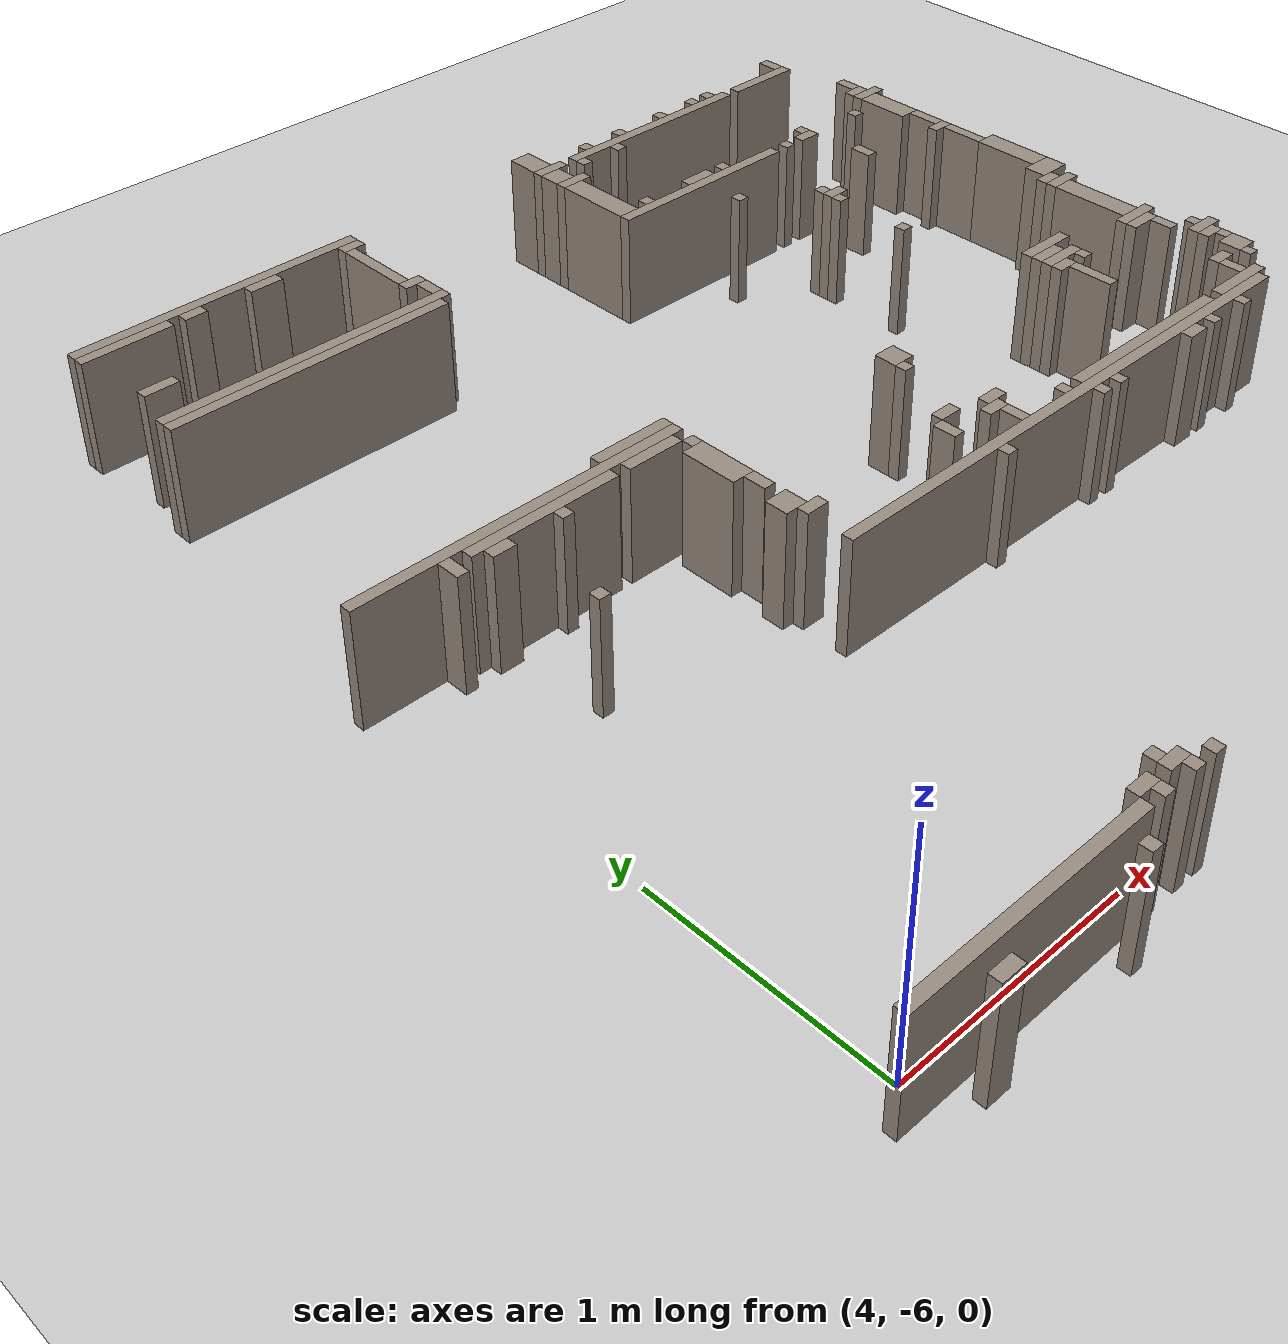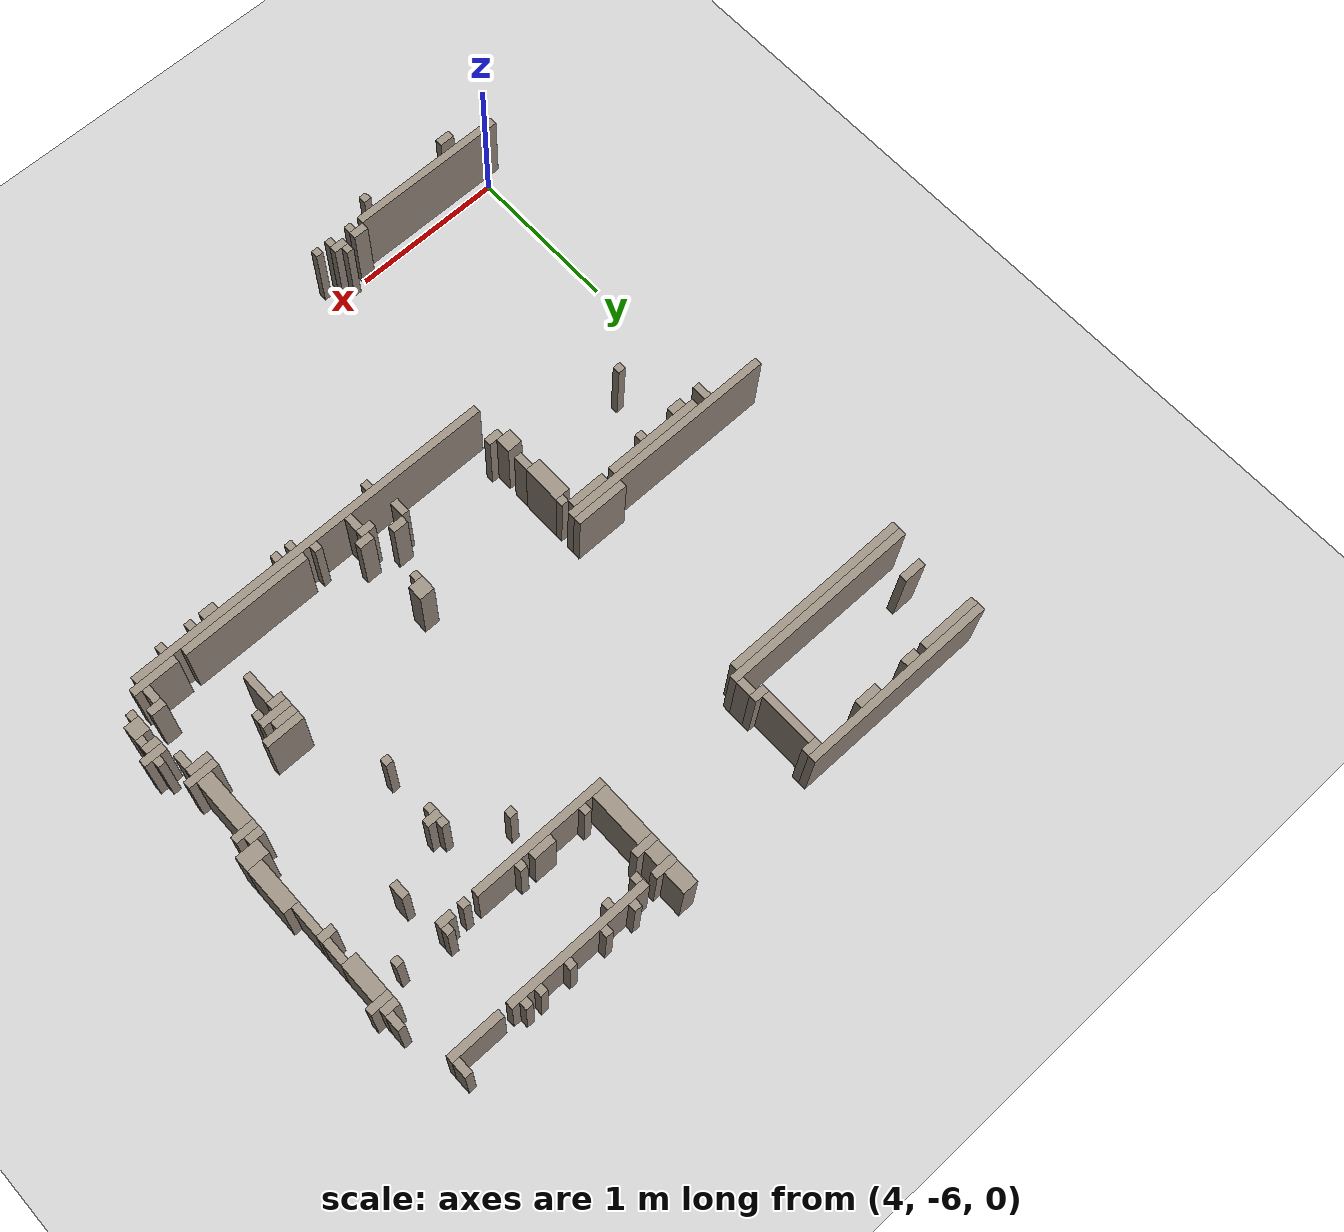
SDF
<sdf version="1.8">
 <world name="sala_real">
  <model name="ground_plane">
   <static>true</static>
   <link name="link">
    <collision name="col">
     <geometry><plane><normal>0 0 1</normal><size>100 100</size></plane></geometry>
    </collision>
    <visual name="vis">
     <geometry><plane><normal>0 0 1</normal><size>100 100</size></plane></geometry>
     <material><ambient>0.8 0.8 0.8 1</ambient><diffuse>0.8 0.8 0.8 1</diffuse></material>
    </visual>
   </link>
  </model>
  <model name="wall_289">
   <static>true</static>
   <pose>6.215 -1.938 0.250 0 0 0</pose>
   <link name="link">
    <collision name="col"><geometry><box><size>0.100 0.150 0.500</size></box></geometry></collision>
    <visual name="vis">
     <geometry><box><size>0.100 0.150 0.500</size></box></geometry>
     <material><ambient>0.6 0.55 0.5 1</ambient><diffuse>0.6 0.55 0.5 1</diffuse></material>
    </visual>
   </link>
  </model>
  <model name="wall_293">
   <static>true</static>
   <pose>6.240 -2.038 0.250 0 0 0</pose>
   <link name="link">
    <collision name="col"><geometry><box><size>0.150 0.050 0.500</size></box></geometry></collision>
    <visual name="vis">
     <geometry><box><size>0.150 0.050 0.500</size></box></geometry>
     <material><ambient>0.6 0.55 0.5 1</ambient><diffuse>0.6 0.55 0.5 1</diffuse></material>
    </visual>
   </link>
  </model>
  <model name="wall_294">
   <static>true</static>
   <pose>6.215 -2.113 0.250 0 0 0</pose>
   <link name="link">
    <collision name="col"><geometry><box><size>0.100 0.100 0.500</size></box></geometry></collision>
    <visual name="vis">
     <geometry><box><size>0.100 0.100 0.500</size></box></geometry>
     <material><ambient>0.6 0.55 0.5 1</ambient><diffuse>0.6 0.55 0.5 1</diffuse></material>
    </visual>
   </link>
  </model>
  <model name="wall_296">
   <static>true</static>
   <pose>5.215 -1.988 0.250 0 0 0</pose>
   <link name="link">
    <collision name="col"><geometry><box><size>0.100 0.050 0.500</size></box></geometry></collision>
    <visual name="vis">
     <geometry><box><size>0.100 0.050 0.500</size></box></geometry>
     <material><ambient>0.6 0.55 0.5 1</ambient><diffuse>0.6 0.55 0.5 1</diffuse></material>
    </visual>
   </link>
  </model>
  <model name="wall_299">
   <static>true</static>
   <pose>4.615 -1.938 0.250 0 0 0</pose>
   <link name="link">
    <collision name="col"><geometry><box><size>1.300 0.050 0.500</size></box></geometry></collision>
    <visual name="vis">
     <geometry><box><size>1.300 0.050 0.500</size></box></geometry>
     <material><ambient>0.6 0.55 0.5 1</ambient><diffuse>0.6 0.55 0.5 1</diffuse></material>
    </visual>
   </link>
  </model>
  <model name="wall_303">
   <static>true</static>
   <pose>7.765 -2.438 0.250 0 0 0</pose>
   <link name="link">
    <collision name="col"><geometry><box><size>0.100 0.050 0.500</size></box></geometry></collision>
    <visual name="vis">
     <geometry><box><size>0.100 0.050 0.500</size></box></geometry>
     <material><ambient>0.6 0.55 0.5 1</ambient><diffuse>0.6 0.55 0.5 1</diffuse></material>
    </visual>
   </link>
  </model>
  <model name="wall_304">
   <static>true</static>
   <pose>7.140 -1.988 0.250 0 0 0</pose>
   <link name="link">
    <collision name="col"><geometry><box><size>0.050 0.050 0.500</size></box></geometry></collision>
    <visual name="vis">
     <geometry><box><size>0.050 0.050 0.500</size></box></geometry>
     <material><ambient>0.6 0.55 0.5 1</ambient><diffuse>0.6 0.55 0.5 1</diffuse></material>
    </visual>
   </link>
  </model>
  <model name="wall_311">
   <static>true</static>
   <pose>7.790 -2.363 0.250 0 0 0</pose>
   <link name="link">
    <collision name="col"><geometry><box><size>0.050 0.100 0.500</size></box></geometry></collision>
    <visual name="vis">
     <geometry><box><size>0.050 0.100 0.500</size></box></geometry>
     <material><ambient>0.6 0.55 0.5 1</ambient><diffuse>0.6 0.55 0.5 1</diffuse></material>
    </visual>
   </link>
  </model>
  <model name="wall_312">
   <static>true</static>
   <pose>7.765 -2.638 0.250 0 0 0</pose>
   <link name="link">
    <collision name="col"><geometry><box><size>0.100 0.250 0.500</size></box></geometry></collision>
    <visual name="vis">
     <geometry><box><size>0.100 0.250 0.500</size></box></geometry>
     <material><ambient>0.6 0.55 0.5 1</ambient><diffuse>0.6 0.55 0.5 1</diffuse></material>
    </visual>
   </link>
  </model>
  <model name="wall_313">
   <static>true</static>
   <pose>6.940 -1.988 0.250 0 0 0</pose>
   <link name="link">
    <collision name="col"><geometry><box><size>0.050 0.050 0.500</size></box></geometry></collision>
    <visual name="vis">
     <geometry><box><size>0.050 0.050 0.500</size></box></geometry>
     <material><ambient>0.6 0.55 0.5 1</ambient><diffuse>0.6 0.55 0.5 1</diffuse></material>
    </visual>
   </link>
  </model>
  <model name="wall_314">
   <static>true</static>
   <pose>7.790 -2.838 0.250 0 0 0</pose>
   <link name="link">
    <collision name="col"><geometry><box><size>0.050 0.150 0.500</size></box></geometry></collision>
    <visual name="vis">
     <geometry><box><size>0.050 0.150 0.500</size></box></geometry>
     <material><ambient>0.6 0.55 0.5 1</ambient><diffuse>0.6 0.55 0.5 1</diffuse></material>
    </visual>
   </link>
  </model>
  <model name="wall_315">
   <static>true</static>
   <pose>6.940 -2.988 0.250 0 0 0</pose>
   <link name="link">
    <collision name="col"><geometry><box><size>0.050 0.050 0.500</size></box></geometry></collision>
    <visual name="vis">
     <geometry><box><size>0.050 0.050 0.500</size></box></geometry>
     <material><ambient>0.6 0.55 0.5 1</ambient><diffuse>0.6 0.55 0.5 1</diffuse></material>
    </visual>
   </link>
  </model>
  <model name="wall_316">
   <static>true</static>
   <pose>6.940 -3.088 0.250 0 0 0</pose>
   <link name="link">
    <collision name="col"><geometry><box><size>0.050 0.050 0.500</size></box></geometry></collision>
    <visual name="vis">
     <geometry><box><size>0.050 0.050 0.500</size></box></geometry>
     <material><ambient>0.6 0.55 0.5 1</ambient><diffuse>0.6 0.55 0.5 1</diffuse></material>
    </visual>
   </link>
  </model>
  <model name="wall_317">
   <static>true</static>
   <pose>7.790 -2.488 0.250 0 0 0</pose>
   <link name="link">
    <collision name="col"><geometry><box><size>0.150 0.050 0.500</size></box></geometry></collision>
    <visual name="vis">
     <geometry><box><size>0.150 0.050 0.500</size></box></geometry>
     <material><ambient>0.6 0.55 0.5 1</ambient><diffuse>0.6 0.55 0.5 1</diffuse></material>
    </visual>
   </link>
  </model>
  <model name="wall_320">
   <static>true</static>
   <pose>7.715 -3.588 0.250 0 0 0</pose>
   <link name="link">
    <collision name="col"><geometry><box><size>0.100 0.050 0.500</size></box></geometry></collision>
    <visual name="vis">
     <geometry><box><size>0.100 0.050 0.500</size></box></geometry>
     <material><ambient>0.6 0.55 0.5 1</ambient><diffuse>0.6 0.55 0.5 1</diffuse></material>
    </visual>
   </link>
  </model>
  <model name="wall_328">
   <static>true</static>
   <pose>5.240 -2.463 0.250 0 0 0</pose>
   <link name="link">
    <collision name="col"><geometry><box><size>0.050 0.100 0.500</size></box></geometry></collision>
    <visual name="vis">
     <geometry><box><size>0.050 0.100 0.500</size></box></geometry>
     <material><ambient>0.6 0.55 0.5 1</ambient><diffuse>0.6 0.55 0.5 1</diffuse></material>
    </visual>
   </link>
  </model>
  <model name="wall_329">
   <static>true</static>
   <pose>5.215 -2.388 0.250 0 0 0</pose>
   <link name="link">
    <collision name="col"><geometry><box><size>0.100 0.050 0.500</size></box></geometry></collision>
    <visual name="vis">
     <geometry><box><size>0.100 0.050 0.500</size></box></geometry>
     <material><ambient>0.6 0.55 0.5 1</ambient><diffuse>0.6 0.55 0.5 1</diffuse></material>
    </visual>
   </link>
  </model>
  <model name="wall_338">
   <static>true</static>
   <pose>7.290 -2.538 0.250 0 0 0</pose>
   <link name="link">
    <collision name="col"><geometry><box><size>0.050 0.050 0.500</size></box></geometry></collision>
    <visual name="vis">
     <geometry><box><size>0.050 0.050 0.500</size></box></geometry>
     <material><ambient>0.6 0.55 0.5 1</ambient><diffuse>0.6 0.55 0.5 1</diffuse></material>
    </visual>
   </link>
  </model>
  <model name="wall_348">
   <static>true</static>
   <pose>5.240 -3.938 0.250 0 0 0</pose>
   <link name="link">
    <collision name="col"><geometry><box><size>0.050 0.050 0.500</size></box></geometry></collision>
    <visual name="vis">
     <geometry><box><size>0.050 0.050 0.500</size></box></geometry>
     <material><ambient>0.6 0.55 0.5 1</ambient><diffuse>0.6 0.55 0.5 1</diffuse></material>
    </visual>
   </link>
  </model>
  <model name="wall_354">
   <static>true</static>
   <pose>7.815 -3.313 0.250 0 0 0</pose>
   <link name="link">
    <collision name="col"><geometry><box><size>0.100 0.300 0.500</size></box></geometry></collision>
    <visual name="vis">
     <geometry><box><size>0.100 0.300 0.500</size></box></geometry>
     <material><ambient>0.6 0.55 0.5 1</ambient><diffuse>0.6 0.55 0.5 1</diffuse></material>
    </visual>
   </link>
  </model>
  <model name="wall_357">
   <static>true</static>
   <pose>5.215 -4.088 0.250 0 0 0</pose>
   <link name="link">
    <collision name="col"><geometry><box><size>0.100 0.250 0.500</size></box></geometry></collision>
    <visual name="vis">
     <geometry><box><size>0.100 0.250 0.500</size></box></geometry>
     <material><ambient>0.6 0.55 0.5 1</ambient><diffuse>0.6 0.55 0.5 1</diffuse></material>
    </visual>
   </link>
  </model>
  <model name="wall_358">
   <static>true</static>
   <pose>7.840 -4.238 0.250 0 0 0</pose>
   <link name="link">
    <collision name="col"><geometry><box><size>0.050 0.050 0.500</size></box></geometry></collision>
    <visual name="vis">
     <geometry><box><size>0.050 0.050 0.500</size></box></geometry>
     <material><ambient>0.6 0.55 0.5 1</ambient><diffuse>0.6 0.55 0.5 1</diffuse></material>
    </visual>
   </link>
  </model>
  <model name="wall_361">
   <static>true</static>
   <pose>7.815 -4.338 0.250 0 0 0</pose>
   <link name="link">
    <collision name="col"><geometry><box><size>0.100 0.050 0.500</size></box></geometry></collision>
    <visual name="vis">
     <geometry><box><size>0.100 0.050 0.500</size></box></geometry>
     <material><ambient>0.6 0.55 0.5 1</ambient><diffuse>0.6 0.55 0.5 1</diffuse></material>
    </visual>
   </link>
  </model>
  <model name="wall_365">
   <static>true</static>
   <pose>6.215 -2.388 0.250 0 0 0</pose>
   <link name="link">
    <collision name="col"><geometry><box><size>0.100 0.350 0.500</size></box></geometry></collision>
    <visual name="vis">
     <geometry><box><size>0.100 0.350 0.500</size></box></geometry>
     <material><ambient>0.6 0.55 0.5 1</ambient><diffuse>0.6 0.55 0.5 1</diffuse></material>
    </visual>
   </link>
  </model>
  <model name="wall_368">
   <static>true</static>
   <pose>6.165 -4.063 0.250 0 0 0</pose>
   <link name="link">
    <collision name="col"><geometry><box><size>0.100 0.100 0.500</size></box></geometry></collision>
    <visual name="vis">
     <geometry><box><size>0.100 0.100 0.500</size></box></geometry>
     <material><ambient>0.6 0.55 0.5 1</ambient><diffuse>0.6 0.55 0.5 1</diffuse></material>
    </visual>
   </link>
  </model>
  <model name="wall_370">
   <static>true</static>
   <pose>7.790 -3.063 0.250 0 0 0</pose>
   <link name="link">
    <collision name="col"><geometry><box><size>0.050 0.200 0.500</size></box></geometry></collision>
    <visual name="vis">
     <geometry><box><size>0.050 0.200 0.500</size></box></geometry>
     <material><ambient>0.6 0.55 0.5 1</ambient><diffuse>0.6 0.55 0.5 1</diffuse></material>
    </visual>
   </link>
  </model>
  <model name="wall_382">
   <static>true</static>
   <pose>6.640 -2.788 0.250 0 0 0</pose>
   <link name="link">
    <collision name="col"><geometry><box><size>0.050 0.050 0.500</size></box></geometry></collision>
    <visual name="vis">
     <geometry><box><size>0.050 0.050 0.500</size></box></geometry>
     <material><ambient>0.6 0.55 0.5 1</ambient><diffuse>0.6 0.55 0.5 1</diffuse></material>
    </visual>
   </link>
  </model>
  <model name="wall_383">
   <static>true</static>
   <pose>7.240 -1.988 0.250 0 0 0</pose>
   <link name="link">
    <collision name="col"><geometry><box><size>0.050 0.050 0.500</size></box></geometry></collision>
    <visual name="vis">
     <geometry><box><size>0.050 0.050 0.500</size></box></geometry>
     <material><ambient>0.6 0.55 0.5 1</ambient><diffuse>0.6 0.55 0.5 1</diffuse></material>
    </visual>
   </link>
  </model>
  <model name="wall_405">
   <static>true</static>
   <pose>5.240 -4.263 0.250 0 0 0</pose>
   <link name="link">
    <collision name="col"><geometry><box><size>0.050 0.100 0.500</size></box></geometry></collision>
    <visual name="vis">
     <geometry><box><size>0.050 0.100 0.500</size></box></geometry>
     <material><ambient>0.6 0.55 0.5 1</ambient><diffuse>0.6 0.55 0.5 1</diffuse></material>
    </visual>
   </link>
  </model>
  <model name="wall_612">
   <static>true</static>
   <pose>6.140 -4.138 0.250 0 0 0</pose>
   <link name="link">
    <collision name="col"><geometry><box><size>0.050 0.050 0.500</size></box></geometry></collision>
    <visual name="vis">
     <geometry><box><size>0.050 0.050 0.500</size></box></geometry>
     <material><ambient>0.6 0.55 0.5 1</ambient><diffuse>0.6 0.55 0.5 1</diffuse></material>
    </visual>
   </link>
  </model>
  <model name="wall_619">
   <static>true</static>
   <pose>5.190 -2.188 0.250 0 0 0</pose>
   <link name="link">
    <collision name="col"><geometry><box><size>0.050 0.350 0.500</size></box></geometry></collision>
    <visual name="vis">
     <geometry><box><size>0.050 0.350 0.500</size></box></geometry>
     <material><ambient>0.6 0.55 0.5 1</ambient><diffuse>0.6 0.55 0.5 1</diffuse></material>
    </visual>
   </link>
  </model>
  <model name="wall_627">
   <static>true</static>
   <pose>6.340 -2.538 0.250 0 0 0</pose>
   <link name="link">
    <collision name="col"><geometry><box><size>0.050 0.050 0.500</size></box></geometry></collision>
    <visual name="vis">
     <geometry><box><size>0.050 0.050 0.500</size></box></geometry>
     <material><ambient>0.6 0.55 0.5 1</ambient><diffuse>0.6 0.55 0.5 1</diffuse></material>
    </visual>
   </link>
  </model>
  <model name="wall_635">
   <static>true</static>
   <pose>5.140 -6.088 0.250 0 0 0</pose>
   <link name="link">
    <collision name="col"><geometry><box><size>0.050 0.050 0.500</size></box></geometry></collision>
    <visual name="vis">
     <geometry><box><size>0.050 0.050 0.500</size></box></geometry>
     <material><ambient>0.6 0.55 0.5 1</ambient><diffuse>0.6 0.55 0.5 1</diffuse></material>
    </visual>
   </link>
  </model>
  <model name="wall_700">
   <static>true</static>
   <pose>7.590 -2.588 0.250 0 0 0</pose>
   <link name="link">
    <collision name="col"><geometry><box><size>0.050 0.050 0.500</size></box></geometry></collision>
    <visual name="vis">
     <geometry><box><size>0.050 0.050 0.500</size></box></geometry>
     <material><ambient>0.6 0.55 0.5 1</ambient><diffuse>0.6 0.55 0.5 1</diffuse></material>
    </visual>
   </link>
  </model>
  <model name="wall_704">
   <static>true</static>
   <pose>6.190 -4.613 0.250 0 0 0</pose>
   <link name="link">
    <collision name="col"><geometry><box><size>0.050 0.100 0.500</size></box></geometry></collision>
    <visual name="vis">
     <geometry><box><size>0.050 0.100 0.500</size></box></geometry>
     <material><ambient>0.6 0.55 0.5 1</ambient><diffuse>0.6 0.55 0.5 1</diffuse></material>
    </visual>
   </link>
  </model>
  <model name="wall_709">
   <static>true</static>
   <pose>6.165 -4.538 0.250 0 0 0</pose>
   <link name="link">
    <collision name="col"><geometry><box><size>0.100 0.050 0.500</size></box></geometry></collision>
    <visual name="vis">
     <geometry><box><size>0.100 0.050 0.500</size></box></geometry>
     <material><ambient>0.6 0.55 0.5 1</ambient><diffuse>0.6 0.55 0.5 1</diffuse></material>
    </visual>
   </link>
  </model>
  <model name="wall_712">
   <static>true</static>
   <pose>5.990 -4.738 0.250 0 0 0</pose>
   <link name="link">
    <collision name="col"><geometry><box><size>0.050 0.050 0.500</size></box></geometry></collision>
    <visual name="vis">
     <geometry><box><size>0.050 0.050 0.500</size></box></geometry>
     <material><ambient>0.6 0.55 0.5 1</ambient><diffuse>0.6 0.55 0.5 1</diffuse></material>
    </visual>
   </link>
  </model>
  <model name="wall_715">
   <static>true</static>
   <pose>5.940 -4.513 0.250 0 0 0</pose>
   <link name="link">
    <collision name="col"><geometry><box><size>0.050 0.100 0.500</size></box></geometry></collision>
    <visual name="vis">
     <geometry><box><size>0.050 0.100 0.500</size></box></geometry>
     <material><ambient>0.6 0.55 0.5 1</ambient><diffuse>0.6 0.55 0.5 1</diffuse></material>
    </visual>
   </link>
  </model>
  <model name="wall_717">
   <static>true</static>
   <pose>7.640 -4.563 0.250 0 0 0</pose>
   <link name="link">
    <collision name="col"><geometry><box><size>0.050 0.100 0.500</size></box></geometry></collision>
    <visual name="vis">
     <geometry><box><size>0.050 0.100 0.500</size></box></geometry>
     <material><ambient>0.6 0.55 0.5 1</ambient><diffuse>0.6 0.55 0.5 1</diffuse></material>
    </visual>
   </link>
  </model>
  <model name="wall_720">
   <static>true</static>
   <pose>6.440 -4.638 0.250 0 0 0</pose>
   <link name="link">
    <collision name="col"><geometry><box><size>0.050 0.050 0.500</size></box></geometry></collision>
    <visual name="vis">
     <geometry><box><size>0.050 0.050 0.500</size></box></geometry>
     <material><ambient>0.6 0.55 0.5 1</ambient><diffuse>0.6 0.55 0.5 1</diffuse></material>
    </visual>
   </link>
  </model>
  <model name="wall_724">
   <static>true</static>
   <pose>6.390 -2.088 0.250 0 0 0</pose>
   <link name="link">
    <collision name="col"><geometry><box><size>0.050 0.050 0.500</size></box></geometry></collision>
    <visual name="vis">
     <geometry><box><size>0.050 0.050 0.500</size></box></geometry>
     <material><ambient>0.6 0.55 0.5 1</ambient><diffuse>0.6 0.55 0.5 1</diffuse></material>
    </visual>
   </link>
  </model>
  <model name="wall_737">
   <static>true</static>
   <pose>4.165 -6.188 0.250 0 0 0</pose>
   <link name="link">
    <collision name="col"><geometry><box><size>0.100 0.050 0.500</size></box></geometry></collision>
    <visual name="vis">
     <geometry><box><size>0.100 0.050 0.500</size></box></geometry>
     <material><ambient>0.6 0.55 0.5 1</ambient><diffuse>0.6 0.55 0.5 1</diffuse></material>
    </visual>
   </link>
  </model>
  <model name="wall_748">
   <static>true</static>
   <pose>4.990 -6.088 0.250 0 0 0</pose>
   <link name="link">
    <collision name="col"><geometry><box><size>0.050 0.050 0.500</size></box></geometry></collision>
    <visual name="vis">
     <geometry><box><size>0.050 0.050 0.500</size></box></geometry>
     <material><ambient>0.6 0.55 0.5 1</ambient><diffuse>0.6 0.55 0.5 1</diffuse></material>
    </visual>
   </link>
  </model>
  <model name="wall_752">
   <static>true</static>
   <pose>4.465 -1.988 0.250 0 0 0</pose>
   <link name="link">
    <collision name="col"><geometry><box><size>0.100 0.050 0.500</size></box></geometry></collision>
    <visual name="vis">
     <geometry><box><size>0.100 0.050 0.500</size></box></geometry>
     <material><ambient>0.6 0.55 0.5 1</ambient><diffuse>0.6 0.55 0.5 1</diffuse></material>
    </visual>
   </link>
  </model>
  <model name="wall_774">
   <static>true</static>
   <pose>4.440 -4.338 0.250 0 0 0</pose>
   <link name="link">
    <collision name="col"><geometry><box><size>0.050 0.050 0.500</size></box></geometry></collision>
    <visual name="vis">
     <geometry><box><size>0.050 0.050 0.500</size></box></geometry>
     <material><ambient>0.6 0.55 0.5 1</ambient><diffuse>0.6 0.55 0.5 1</diffuse></material>
    </visual>
   </link>
  </model>
  <model name="wall_777">
   <static>true</static>
   <pose>4.790 -6.188 0.250 0 0 0</pose>
   <link name="link">
    <collision name="col"><geometry><box><size>0.050 0.050 0.500</size></box></geometry></collision>
    <visual name="vis">
     <geometry><box><size>0.050 0.050 0.500</size></box></geometry>
     <material><ambient>0.6 0.55 0.5 1</ambient><diffuse>0.6 0.55 0.5 1</diffuse></material>
    </visual>
   </link>
  </model>
  <model name="wall_787">
   <static>true</static>
   <pose>6.540 -4.738 0.250 0 0 0</pose>
   <link name="link">
    <collision name="col"><geometry><box><size>0.050 0.050 0.500</size></box></geometry></collision>
    <visual name="vis">
     <geometry><box><size>0.050 0.050 0.500</size></box></geometry>
     <material><ambient>0.6 0.55 0.5 1</ambient><diffuse>0.6 0.55 0.5 1</diffuse></material>
    </visual>
   </link>
  </model>
  <model name="wall_788">
   <static>true</static>
   <pose>6.690 -1.988 0.250 0 0 0</pose>
   <link name="link">
    <collision name="col"><geometry><box><size>0.050 0.050 0.500</size></box></geometry></collision>
    <visual name="vis">
     <geometry><box><size>0.050 0.050 0.500</size></box></geometry>
     <material><ambient>0.6 0.55 0.5 1</ambient><diffuse>0.6 0.55 0.5 1</diffuse></material>
    </visual>
   </link>
  </model>
  <model name="wall_790">
   <static>true</static>
   <pose>6.640 -4.738 0.250 0 0 0</pose>
   <link name="link">
    <collision name="col"><geometry><box><size>0.050 0.050 0.500</size></box></geometry></collision>
    <visual name="vis">
     <geometry><box><size>0.050 0.050 0.500</size></box></geometry>
     <material><ambient>0.6 0.55 0.5 1</ambient><diffuse>0.6 0.55 0.5 1</diffuse></material>
    </visual>
   </link>
  </model>
  <model name="wall_802">
   <static>true</static>
   <pose>6.790 -2.538 0.250 0 0 0</pose>
   <link name="link">
    <collision name="col"><geometry><box><size>0.050 0.050 0.500</size></box></geometry></collision>
    <visual name="vis">
     <geometry><box><size>0.050 0.050 0.500</size></box></geometry>
     <material><ambient>0.6 0.55 0.5 1</ambient><diffuse>0.6 0.55 0.5 1</diffuse></material>
    </visual>
   </link>
  </model>
  <model name="wall_811">
   <static>true</static>
   <pose>7.140 -2.588 0.250 0 0 0</pose>
   <link name="link">
    <collision name="col"><geometry><box><size>0.050 0.050 0.500</size></box></geometry></collision>
    <visual name="vis">
     <geometry><box><size>0.050 0.050 0.500</size></box></geometry>
     <material><ambient>0.6 0.55 0.5 1</ambient><diffuse>0.6 0.55 0.5 1</diffuse></material>
    </visual>
   </link>
  </model>
  <model name="wall_812">
   <static>true</static>
   <pose>7.265 -2.588 0.250 0 0 0</pose>
   <link name="link">
    <collision name="col"><geometry><box><size>0.100 0.050 0.500</size></box></geometry></collision>
    <visual name="vis">
     <geometry><box><size>0.100 0.050 0.500</size></box></geometry>
     <material><ambient>0.6 0.55 0.5 1</ambient><diffuse>0.6 0.55 0.5 1</diffuse></material>
    </visual>
   </link>
  </model>
  <model name="wall_816">
   <static>true</static>
   <pose>6.015 -4.438 0.250 0 0 0</pose>
   <link name="link">
    <collision name="col"><geometry><box><size>0.100 0.050 0.500</size></box></geometry></collision>
    <visual name="vis">
     <geometry><box><size>0.100 0.050 0.500</size></box></geometry>
     <material><ambient>0.6 0.55 0.5 1</ambient><diffuse>0.6 0.55 0.5 1</diffuse></material>
    </visual>
   </link>
  </model>
  <model name="wall_835">
   <static>true</static>
   <pose>7.215 -4.038 0.250 0 0 0</pose>
   <link name="link">
    <collision name="col"><geometry><box><size>0.200 0.050 0.500</size></box></geometry></collision>
    <visual name="vis">
     <geometry><box><size>0.200 0.050 0.500</size></box></geometry>
     <material><ambient>0.6 0.55 0.5 1</ambient><diffuse>0.6 0.55 0.5 1</diffuse></material>
    </visual>
   </link>
  </model>
  <model name="wall_836">
   <static>true</static>
   <pose>7.665 -4.488 0.250 0 0 0</pose>
   <link name="link">
    <collision name="col"><geometry><box><size>0.100 0.050 0.500</size></box></geometry></collision>
    <visual name="vis">
     <geometry><box><size>0.100 0.050 0.500</size></box></geometry>
     <material><ambient>0.6 0.55 0.5 1</ambient><diffuse>0.6 0.55 0.5 1</diffuse></material>
    </visual>
   </link>
  </model>
  <model name="wall_838">
   <static>true</static>
   <pose>7.690 -4.088 0.250 0 0 0</pose>
   <link name="link">
    <collision name="col"><geometry><box><size>0.150 0.050 0.500</size></box></geometry></collision>
    <visual name="vis">
     <geometry><box><size>0.150 0.050 0.500</size></box></geometry>
     <material><ambient>0.6 0.55 0.5 1</ambient><diffuse>0.6 0.55 0.5 1</diffuse></material>
    </visual>
   </link>
  </model>
  <model name="wall_839">
   <static>true</static>
   <pose>7.715 -3.838 0.250 0 0 0</pose>
   <link name="link">
    <collision name="col"><geometry><box><size>0.100 0.350 0.500</size></box></geometry></collision>
    <visual name="vis">
     <geometry><box><size>0.100 0.350 0.500</size></box></geometry>
     <material><ambient>0.6 0.55 0.5 1</ambient><diffuse>0.6 0.55 0.5 1</diffuse></material>
    </visual>
   </link>
  </model>
  <model name="wall_840">
   <static>true</static>
   <pose>7.240 -4.738 0.250 0 0 0</pose>
   <link name="link">
    <collision name="col"><geometry><box><size>0.050 0.050 0.500</size></box></geometry></collision>
    <visual name="vis">
     <geometry><box><size>0.050 0.050 0.500</size></box></geometry>
     <material><ambient>0.6 0.55 0.5 1</ambient><diffuse>0.6 0.55 0.5 1</diffuse></material>
    </visual>
   </link>
  </model>
  <model name="wall_850">
   <static>true</static>
   <pose>7.190 -4.213 0.250 0 0 0</pose>
   <link name="link">
    <collision name="col"><geometry><box><size>0.050 0.200 0.500</size></box></geometry></collision>
    <visual name="vis">
     <geometry><box><size>0.050 0.200 0.500</size></box></geometry>
     <material><ambient>0.6 0.55 0.5 1</ambient><diffuse>0.6 0.55 0.5 1</diffuse></material>
    </visual>
   </link>
  </model>
  <model name="wall_857">
   <static>true</static>
   <pose>7.290 -4.088 0.250 0 0 0</pose>
   <link name="link">
    <collision name="col"><geometry><box><size>0.050 0.050 0.500</size></box></geometry></collision>
    <visual name="vis">
     <geometry><box><size>0.050 0.050 0.500</size></box></geometry>
     <material><ambient>0.6 0.55 0.5 1</ambient><diffuse>0.6 0.55 0.5 1</diffuse></material>
    </visual>
   </link>
  </model>
  <model name="wall_858">
   <static>true</static>
   <pose>7.740 -4.163 0.250 0 0 0</pose>
   <link name="link">
    <collision name="col"><geometry><box><size>0.050 0.100 0.500</size></box></geometry></collision>
    <visual name="vis">
     <geometry><box><size>0.050 0.100 0.500</size></box></geometry>
     <material><ambient>0.6 0.55 0.5 1</ambient><diffuse>0.6 0.55 0.5 1</diffuse></material>
    </visual>
   </link>
  </model>
  <model name="wall_864">
   <static>true</static>
   <pose>7.765 -2.938 0.250 0 0 0</pose>
   <link name="link">
    <collision name="col"><geometry><box><size>0.100 0.050 0.500</size></box></geometry></collision>
    <visual name="vis">
     <geometry><box><size>0.100 0.050 0.500</size></box></geometry>
     <material><ambient>0.6 0.55 0.5 1</ambient><diffuse>0.6 0.55 0.5 1</diffuse></material>
    </visual>
   </link>
  </model>
  <model name="wall_869">
   <static>true</static>
   <pose>6.215 -4.488 0.250 0 0 0</pose>
   <link name="link">
    <collision name="col"><geometry><box><size>0.100 0.050 0.500</size></box></geometry></collision>
    <visual name="vis">
     <geometry><box><size>0.100 0.050 0.500</size></box></geometry>
     <material><ambient>0.6 0.55 0.5 1</ambient><diffuse>0.6 0.55 0.5 1</diffuse></material>
    </visual>
   </link>
  </model>
  <model name="wall_872">
   <static>true</static>
   <pose>6.240 -2.188 0.250 0 0 0</pose>
   <link name="link">
    <collision name="col"><geometry><box><size>0.150 0.050 0.500</size></box></geometry></collision>
    <visual name="vis">
     <geometry><box><size>0.150 0.050 0.500</size></box></geometry>
     <material><ambient>0.6 0.55 0.5 1</ambient><diffuse>0.6 0.55 0.5 1</diffuse></material>
    </visual>
   </link>
  </model>
  <model name="wall_899">
   <static>true</static>
   <pose>7.740 -3.638 0.250 0 0 0</pose>
   <link name="link">
    <collision name="col"><geometry><box><size>0.150 0.050 0.500</size></box></geometry></collision>
    <visual name="vis">
     <geometry><box><size>0.150 0.050 0.500</size></box></geometry>
     <material><ambient>0.6 0.55 0.5 1</ambient><diffuse>0.6 0.55 0.5 1</diffuse></material>
    </visual>
   </link>
  </model>
  <model name="wall_910">
   <static>true</static>
   <pose>7.690 -1.963 0.250 0 0 0</pose>
   <link name="link">
    <collision name="col"><geometry><box><size>0.050 0.100 0.500</size></box></geometry></collision>
    <visual name="vis">
     <geometry><box><size>0.050 0.100 0.500</size></box></geometry>
     <material><ambient>0.6 0.55 0.5 1</ambient><diffuse>0.6 0.55 0.5 1</diffuse></material>
    </visual>
   </link>
  </model>
  <model name="wall_937">
   <static>true</static>
   <pose>4.365 -3.938 0.250 0 0 0</pose>
   <link name="link">
    <collision name="col"><geometry><box><size>0.100 0.050 0.500</size></box></geometry></collision>
    <visual name="vis">
     <geometry><box><size>0.100 0.050 0.500</size></box></geometry>
     <material><ambient>0.6 0.55 0.5 1</ambient><diffuse>0.6 0.55 0.5 1</diffuse></material>
    </visual>
   </link>
  </model>
  <model name="wall_955">
   <static>true</static>
   <pose>6.590 -2.088 0.250 0 0 0</pose>
   <link name="link">
    <collision name="col"><geometry><box><size>0.050 0.050 0.500</size></box></geometry></collision>
    <visual name="vis">
     <geometry><box><size>0.050 0.050 0.500</size></box></geometry>
     <material><ambient>0.6 0.55 0.5 1</ambient><diffuse>0.6 0.55 0.5 1</diffuse></material>
    </visual>
   </link>
  </model>
  <model name="wall_966">
   <static>true</static>
   <pose>7.790 -4.538 0.250 0 0 0</pose>
   <link name="link">
    <collision name="col"><geometry><box><size>0.050 0.050 0.500</size></box></geometry></collision>
    <visual name="vis">
     <geometry><box><size>0.050 0.050 0.500</size></box></geometry>
     <material><ambient>0.6 0.55 0.5 1</ambient><diffuse>0.6 0.55 0.5 1</diffuse></material>
    </visual>
   </link>
  </model>
  <model name="wall_990">
   <static>true</static>
   <pose>4.615 -2.538 0.250 0 0 0</pose>
   <link name="link">
    <collision name="col"><geometry><box><size>1.300 0.050 0.500</size></box></geometry></collision>
    <visual name="vis">
     <geometry><box><size>1.300 0.050 0.500</size></box></geometry>
     <material><ambient>0.6 0.55 0.5 1</ambient><diffuse>0.6 0.55 0.5 1</diffuse></material>
    </visual>
   </link>
  </model>
  <model name="wall_994">
   <static>true</static>
   <pose>4.165 -1.988 0.250 0 0 0</pose>
   <link name="link">
    <collision name="col"><geometry><box><size>0.400 0.050 0.500</size></box></geometry></collision>
    <visual name="vis">
     <geometry><box><size>0.400 0.050 0.500</size></box></geometry>
     <material><ambient>0.6 0.55 0.5 1</ambient><diffuse>0.6 0.55 0.5 1</diffuse></material>
    </visual>
   </link>
  </model>
  <model name="wall_995">
   <static>true</static>
   <pose>4.790 -1.988 0.250 0 0 0</pose>
   <link name="link">
    <collision name="col"><geometry><box><size>0.150 0.050 0.500</size></box></geometry></collision>
    <visual name="vis">
     <geometry><box><size>0.150 0.050 0.500</size></box></geometry>
     <material><ambient>0.6 0.55 0.5 1</ambient><diffuse>0.6 0.55 0.5 1</diffuse></material>
    </visual>
   </link>
  </model>
  <model name="wall_996">
   <static>true</static>
   <pose>5.215 -4.413 0.250 0 0 0</pose>
   <link name="link">
    <collision name="col"><geometry><box><size>0.100 0.100 0.500</size></box></geometry></collision>
    <visual name="vis">
     <geometry><box><size>0.100 0.100 0.500</size></box></geometry>
     <material><ambient>0.6 0.55 0.5 1</ambient><diffuse>0.6 0.55 0.5 1</diffuse></material>
    </visual>
   </link>
  </model>
  <model name="wall_997">
   <static>true</static>
   <pose>6.490 -1.988 0.250 0 0 0</pose>
   <link name="link">
    <collision name="col"><geometry><box><size>0.050 0.050 0.500</size></box></geometry></collision>
    <visual name="vis">
     <geometry><box><size>0.050 0.050 0.500</size></box></geometry>
     <material><ambient>0.6 0.55 0.5 1</ambient><diffuse>0.6 0.55 0.5 1</diffuse></material>
    </visual>
   </link>
  </model>
  <model name="wall_998">
   <static>true</static>
   <pose>6.940 -3.438 0.250 0 0 0</pose>
   <link name="link">
    <collision name="col"><geometry><box><size>0.050 0.050 0.500</size></box></geometry></collision>
    <visual name="vis">
     <geometry><box><size>0.050 0.050 0.500</size></box></geometry>
     <material><ambient>0.6 0.55 0.5 1</ambient><diffuse>0.6 0.55 0.5 1</diffuse></material>
    </visual>
   </link>
  </model>
  <model name="wall_1000">
   <static>true</static>
   <pose>6.840 -2.038 0.250 0 0 0</pose>
   <link name="link">
    <collision name="col"><geometry><box><size>0.950 0.050 0.500</size></box></geometry></collision>
    <visual name="vis">
     <geometry><box><size>0.950 0.050 0.500</size></box></geometry>
     <material><ambient>0.6 0.55 0.5 1</ambient><diffuse>0.6 0.55 0.5 1</diffuse></material>
    </visual>
   </link>
  </model>
  <model name="wall_1001">
   <static>true</static>
   <pose>7.540 -2.038 0.250 0 0 0</pose>
   <link name="link">
    <collision name="col"><geometry><box><size>0.350 0.050 0.500</size></box></geometry></collision>
    <visual name="vis">
     <geometry><box><size>0.350 0.050 0.500</size></box></geometry>
     <material><ambient>0.6 0.55 0.5 1</ambient><diffuse>0.6 0.55 0.5 1</diffuse></material>
    </visual>
   </link>
  </model>
  <model name="wall_1003">
   <static>true</static>
   <pose>4.090 -2.338 0.250 0 0 0</pose>
   <link name="link">
    <collision name="col"><geometry><box><size>0.150 0.050 0.500</size></box></geometry></collision>
    <visual name="vis">
     <geometry><box><size>0.150 0.050 0.500</size></box></geometry>
     <material><ambient>0.6 0.55 0.5 1</ambient><diffuse>0.6 0.55 0.5 1</diffuse></material>
    </visual>
   </link>
  </model>
  <model name="wall_1005">
   <static>true</static>
   <pose>5.240 -6.088 0.250 0 0 0</pose>
   <link name="link">
    <collision name="col"><geometry><box><size>0.050 0.050 0.500</size></box></geometry></collision>
    <visual name="vis">
     <geometry><box><size>0.050 0.050 0.500</size></box></geometry>
     <material><ambient>0.6 0.55 0.5 1</ambient><diffuse>0.6 0.55 0.5 1</diffuse></material>
    </visual>
   </link>
  </model>
  <model name="wall_1006">
   <static>true</static>
   <pose>7.790 -3.513 0.250 0 0 0</pose>
   <link name="link">
    <collision name="col"><geometry><box><size>0.150 0.100 0.500</size></box></geometry></collision>
    <visual name="vis">
     <geometry><box><size>0.150 0.100 0.500</size></box></geometry>
     <material><ambient>0.6 0.55 0.5 1</ambient><diffuse>0.6 0.55 0.5 1</diffuse></material>
    </visual>
   </link>
  </model>
  <model name="wall_1007">
   <static>true</static>
   <pose>6.640 -2.538 0.250 0 0 0</pose>
   <link name="link">
    <collision name="col"><geometry><box><size>0.150 0.050 0.500</size></box></geometry></collision>
    <visual name="vis">
     <geometry><box><size>0.150 0.050 0.500</size></box></geometry>
     <material><ambient>0.6 0.55 0.5 1</ambient><diffuse>0.6 0.55 0.5 1</diffuse></material>
    </visual>
   </link>
  </model>
  <model name="wall_1008">
   <static>true</static>
   <pose>4.590 -2.588 0.250 0 0 0</pose>
   <link name="link">
    <collision name="col"><geometry><box><size>1.250 0.050 0.500</size></box></geometry></collision>
    <visual name="vis">
     <geometry><box><size>1.250 0.050 0.500</size></box></geometry>
     <material><ambient>0.6 0.55 0.5 1</ambient><diffuse>0.6 0.55 0.5 1</diffuse></material>
    </visual>
   </link>
  </model>
  <model name="wall_1009">
   <static>true</static>
   <pose>6.615 -2.588 0.250 0 0 0</pose>
   <link name="link">
    <collision name="col"><geometry><box><size>0.900 0.050 0.500</size></box></geometry></collision>
    <visual name="vis">
     <geometry><box><size>0.900 0.050 0.500</size></box></geometry>
     <material><ambient>0.6 0.55 0.5 1</ambient><diffuse>0.6 0.55 0.5 1</diffuse></material>
    </visual>
   </link>
  </model>
  <model name="wall_1010">
   <static>true</static>
   <pose>7.340 -2.863 0.250 0 0 0</pose>
   <link name="link">
    <collision name="col"><geometry><box><size>0.050 0.100 0.500</size></box></geometry></collision>
    <visual name="vis">
     <geometry><box><size>0.050 0.100 0.500</size></box></geometry>
     <material><ambient>0.6 0.55 0.5 1</ambient><diffuse>0.6 0.55 0.5 1</diffuse></material>
    </visual>
   </link>
  </model>
  <model name="wall_1011">
   <static>true</static>
   <pose>6.965 -3.038 0.250 0 0 0</pose>
   <link name="link">
    <collision name="col"><geometry><box><size>0.100 0.050 0.500</size></box></geometry></collision>
    <visual name="vis">
     <geometry><box><size>0.100 0.050 0.500</size></box></geometry>
     <material><ambient>0.6 0.55 0.5 1</ambient><diffuse>0.6 0.55 0.5 1</diffuse></material>
    </visual>
   </link>
  </model>
  <model name="wall_1012">
   <static>true</static>
   <pose>7.815 -4.463 0.250 0 0 0</pose>
   <link name="link">
    <collision name="col"><geometry><box><size>0.100 0.100 0.500</size></box></geometry></collision>
    <visual name="vis">
     <geometry><box><size>0.100 0.100 0.500</size></box></geometry>
     <material><ambient>0.6 0.55 0.5 1</ambient><diffuse>0.6 0.55 0.5 1</diffuse></material>
    </visual>
   </link>
  </model>
  <model name="wall_1018">
   <static>true</static>
   <pose>5.090 -3.788 0.250 0 0 0</pose>
   <link name="link">
    <collision name="col"><geometry><box><size>0.350 0.050 0.500</size></box></geometry></collision>
    <visual name="vis">
     <geometry><box><size>0.350 0.050 0.500</size></box></geometry>
     <material><ambient>0.6 0.55 0.5 1</ambient><diffuse>0.6 0.55 0.5 1</diffuse></material>
    </visual>
   </link>
  </model>
  <model name="wall_1020">
   <static>true</static>
   <pose>4.540 -3.838 0.250 0 0 0</pose>
   <link name="link">
    <collision name="col"><geometry><box><size>1.450 0.050 0.500</size></box></geometry></collision>
    <visual name="vis">
     <geometry><box><size>1.450 0.050 0.500</size></box></geometry>
     <material><ambient>0.6 0.55 0.5 1</ambient><diffuse>0.6 0.55 0.5 1</diffuse></material>
    </visual>
   </link>
  </model>
  <model name="wall_1022">
   <static>true</static>
   <pose>4.190 -3.913 0.250 0 0 0</pose>
   <link name="link">
    <collision name="col"><geometry><box><size>0.050 0.100 0.500</size></box></geometry></collision>
    <visual name="vis">
     <geometry><box><size>0.050 0.100 0.500</size></box></geometry>
     <material><ambient>0.6 0.55 0.5 1</ambient><diffuse>0.6 0.55 0.5 1</diffuse></material>
    </visual>
   </link>
  </model>
  <model name="wall_1023">
   <static>true</static>
   <pose>4.590 -3.888 0.250 0 0 0</pose>
   <link name="link">
    <collision name="col"><geometry><box><size>0.650 0.050 0.500</size></box></geometry></collision>
    <visual name="vis">
     <geometry><box><size>0.650 0.050 0.500</size></box></geometry>
     <material><ambient>0.6 0.55 0.5 1</ambient><diffuse>0.6 0.55 0.5 1</diffuse></material>
    </visual>
   </link>
  </model>
  <model name="wall_1024">
   <static>true</static>
   <pose>5.090 -3.888 0.250 0 0 0</pose>
   <link name="link">
    <collision name="col"><geometry><box><size>0.250 0.050 0.500</size></box></geometry></collision>
    <visual name="vis">
     <geometry><box><size>0.250 0.050 0.500</size></box></geometry>
     <material><ambient>0.6 0.55 0.5 1</ambient><diffuse>0.6 0.55 0.5 1</diffuse></material>
    </visual>
   </link>
  </model>
  <model name="wall_1025">
   <static>true</static>
   <pose>4.640 -3.938 0.250 0 0 0</pose>
   <link name="link">
    <collision name="col"><geometry><box><size>0.050 0.050 0.500</size></box></geometry></collision>
    <visual name="vis">
     <geometry><box><size>0.050 0.050 0.500</size></box></geometry>
     <material><ambient>0.6 0.55 0.5 1</ambient><diffuse>0.6 0.55 0.5 1</diffuse></material>
    </visual>
   </link>
  </model>
  <model name="wall_1026">
   <static>true</static>
   <pose>7.240 -3.938 0.250 0 0 0</pose>
   <link name="link">
    <collision name="col"><geometry><box><size>0.250 0.050 0.500</size></box></geometry></collision>
    <visual name="vis">
     <geometry><box><size>0.250 0.050 0.500</size></box></geometry>
     <material><ambient>0.6 0.55 0.5 1</ambient><diffuse>0.6 0.55 0.5 1</diffuse></material>
    </visual>
   </link>
  </model>
  <model name="wall_1028">
   <static>true</static>
   <pose>7.190 -3.988 0.250 0 0 0</pose>
   <link name="link">
    <collision name="col"><geometry><box><size>0.150 0.050 0.500</size></box></geometry></collision>
    <visual name="vis">
     <geometry><box><size>0.150 0.050 0.500</size></box></geometry>
     <material><ambient>0.6 0.55 0.5 1</ambient><diffuse>0.6 0.55 0.5 1</diffuse></material>
    </visual>
   </link>
  </model>
  <model name="wall_1029">
   <static>true</static>
   <pose>7.715 -4.038 0.250 0 0 0</pose>
   <link name="link">
    <collision name="col"><geometry><box><size>0.200 0.050 0.500</size></box></geometry></collision>
    <visual name="vis">
     <geometry><box><size>0.200 0.050 0.500</size></box></geometry>
     <material><ambient>0.6 0.55 0.5 1</ambient><diffuse>0.6 0.55 0.5 1</diffuse></material>
    </visual>
   </link>
  </model>
  <model name="wall_1030">
   <static>true</static>
   <pose>7.165 -4.088 0.250 0 0 0</pose>
   <link name="link">
    <collision name="col"><geometry><box><size>0.100 0.050 0.500</size></box></geometry></collision>
    <visual name="vis">
     <geometry><box><size>0.100 0.050 0.500</size></box></geometry>
     <material><ambient>0.6 0.55 0.5 1</ambient><diffuse>0.6 0.55 0.5 1</diffuse></material>
    </visual>
   </link>
  </model>
  <model name="wall_1031">
   <static>true</static>
   <pose>7.840 -4.388 0.250 0 0 0</pose>
   <link name="link">
    <collision name="col"><geometry><box><size>0.050 0.050 0.500</size></box></geometry></collision>
    <visual name="vis">
     <geometry><box><size>0.050 0.050 0.500</size></box></geometry>
     <material><ambient>0.6 0.55 0.5 1</ambient><diffuse>0.6 0.55 0.5 1</diffuse></material>
    </visual>
   </link>
  </model>
  <model name="wall_1032">
   <static>true</static>
   <pose>7.840 -4.288 0.250 0 0 0</pose>
   <link name="link">
    <collision name="col"><geometry><box><size>0.150 0.050 0.500</size></box></geometry></collision>
    <visual name="vis">
     <geometry><box><size>0.150 0.050 0.500</size></box></geometry>
     <material><ambient>0.6 0.55 0.5 1</ambient><diffuse>0.6 0.55 0.5 1</diffuse></material>
    </visual>
   </link>
  </model>
  <model name="wall_1034">
   <static>true</static>
   <pose>5.265 -4.488 0.250 0 0 0</pose>
   <link name="link">
    <collision name="col"><geometry><box><size>0.100 0.050 0.500</size></box></geometry></collision>
    <visual name="vis">
     <geometry><box><size>0.100 0.050 0.500</size></box></geometry>
     <material><ambient>0.6 0.55 0.5 1</ambient><diffuse>0.6 0.55 0.5 1</diffuse></material>
    </visual>
   </link>
  </model>
  <model name="wall_1037">
   <static>true</static>
   <pose>6.940 -4.638 0.250 0 0 0</pose>
   <link name="link">
    <collision name="col"><geometry><box><size>0.850 0.050 0.500</size></box></geometry></collision>
    <visual name="vis">
     <geometry><box><size>0.850 0.050 0.500</size></box></geometry>
     <material><ambient>0.6 0.55 0.5 1</ambient><diffuse>0.6 0.55 0.5 1</diffuse></material>
    </visual>
   </link>
  </model>
  <model name="wall_1038">
   <static>true</static>
   <pose>7.565 -4.638 0.250 0 0 0</pose>
   <link name="link">
    <collision name="col"><geometry><box><size>0.300 0.050 0.500</size></box></geometry></collision>
    <visual name="vis">
     <geometry><box><size>0.300 0.050 0.500</size></box></geometry>
     <material><ambient>0.6 0.55 0.5 1</ambient><diffuse>0.6 0.55 0.5 1</diffuse></material>
    </visual>
   </link>
  </model>
  <model name="wall_1041">
   <static>true</static>
   <pose>6.440 -4.688 0.250 0 0 0</pose>
   <link name="link">
    <collision name="col"><geometry><box><size>2.450 0.050 0.500</size></box></geometry></collision>
    <visual name="vis">
     <geometry><box><size>2.450 0.050 0.500</size></box></geometry>
     <material><ambient>0.6 0.55 0.5 1</ambient><diffuse>0.6 0.55 0.5 1</diffuse></material>
    </visual>
   </link>
  </model>
  <model name="wall_1044">
   <static>true</static>
   <pose>7.115 -4.738 0.250 0 0 0</pose>
   <link name="link">
    <collision name="col"><geometry><box><size>0.100 0.050 0.500</size></box></geometry></collision>
    <visual name="vis">
     <geometry><box><size>0.100 0.050 0.500</size></box></geometry>
     <material><ambient>0.6 0.55 0.5 1</ambient><diffuse>0.6 0.55 0.5 1</diffuse></material>
    </visual>
   </link>
  </model>
  <model name="wall_1045">
   <static>true</static>
   <pose>7.440 -4.738 0.250 0 0 0</pose>
   <link name="link">
    <collision name="col"><geometry><box><size>0.050 0.050 0.500</size></box></geometry></collision>
    <visual name="vis">
     <geometry><box><size>0.050 0.050 0.500</size></box></geometry>
     <material><ambient>0.6 0.55 0.5 1</ambient><diffuse>0.6 0.55 0.5 1</diffuse></material>
    </visual>
   </link>
  </model>
  <model name="wall_1065">
   <static>true</static>
   <pose>5.090 -5.988 0.250 0 0 0</pose>
   <link name="link">
    <collision name="col"><geometry><box><size>0.050 0.050 0.500</size></box></geometry></collision>
    <visual name="vis">
     <geometry><box><size>0.050 0.050 0.500</size></box></geometry>
     <material><ambient>0.6 0.55 0.5 1</ambient><diffuse>0.6 0.55 0.5 1</diffuse></material>
    </visual>
   </link>
  </model>
  <model name="wall_1067">
   <static>true</static>
   <pose>4.965 -6.038 0.250 0 0 0</pose>
   <link name="link">
    <collision name="col"><geometry><box><size>0.100 0.050 0.500</size></box></geometry></collision>
    <visual name="vis">
     <geometry><box><size>0.100 0.050 0.500</size></box></geometry>
     <material><ambient>0.6 0.55 0.5 1</ambient><diffuse>0.6 0.55 0.5 1</diffuse></material>
    </visual>
   </link>
  </model>
  <model name="wall_1068">
   <static>true</static>
   <pose>5.115 -6.038 0.250 0 0 0</pose>
   <link name="link">
    <collision name="col"><geometry><box><size>0.100 0.050 0.500</size></box></geometry></collision>
    <visual name="vis">
     <geometry><box><size>0.100 0.050 0.500</size></box></geometry>
     <material><ambient>0.6 0.55 0.5 1</ambient><diffuse>0.6 0.55 0.5 1</diffuse></material>
    </visual>
   </link>
  </model>
  <model name="wall_1073">
   <static>true</static>
   <pose>4.390 -6.088 0.250 0 0 0</pose>
   <link name="link">
    <collision name="col"><geometry><box><size>1.050 0.050 0.500</size></box></geometry></collision>
    <visual name="vis">
     <geometry><box><size>1.050 0.050 0.500</size></box></geometry>
     <material><ambient>0.6 0.55 0.5 1</ambient><diffuse>0.6 0.55 0.5 1</diffuse></material>
    </visual>
   </link>
  </model>
 </world>
</sdf>
